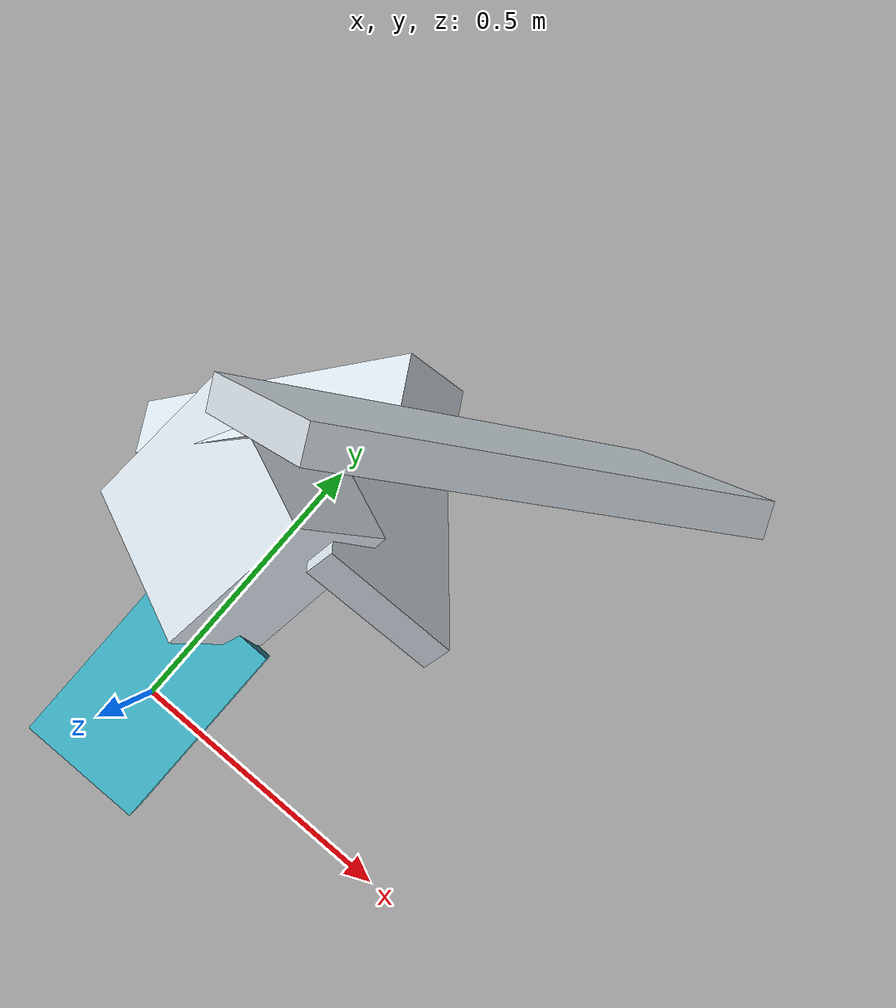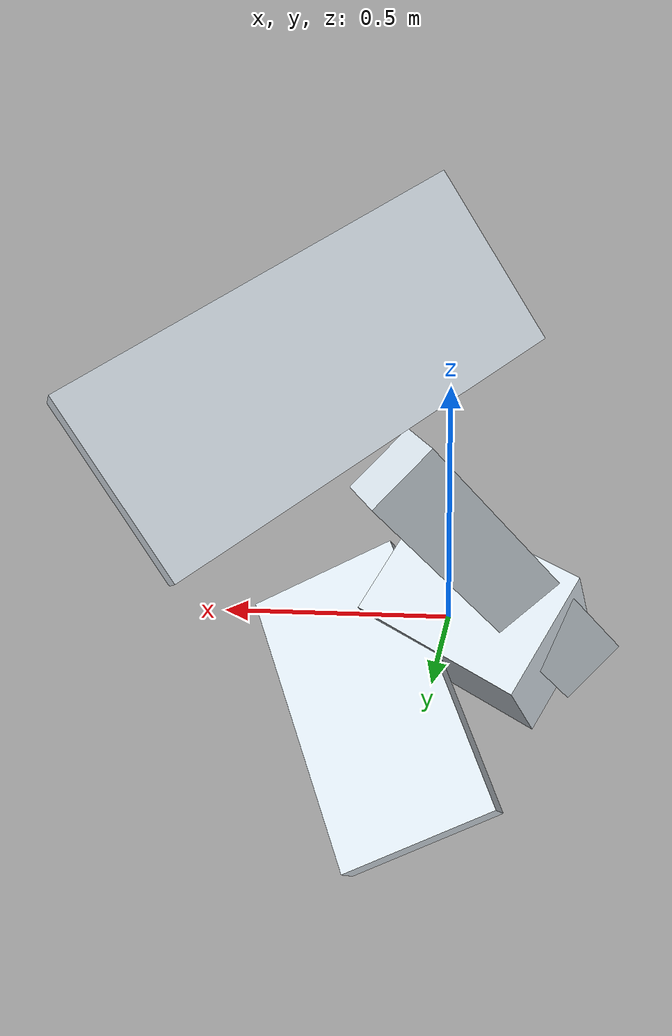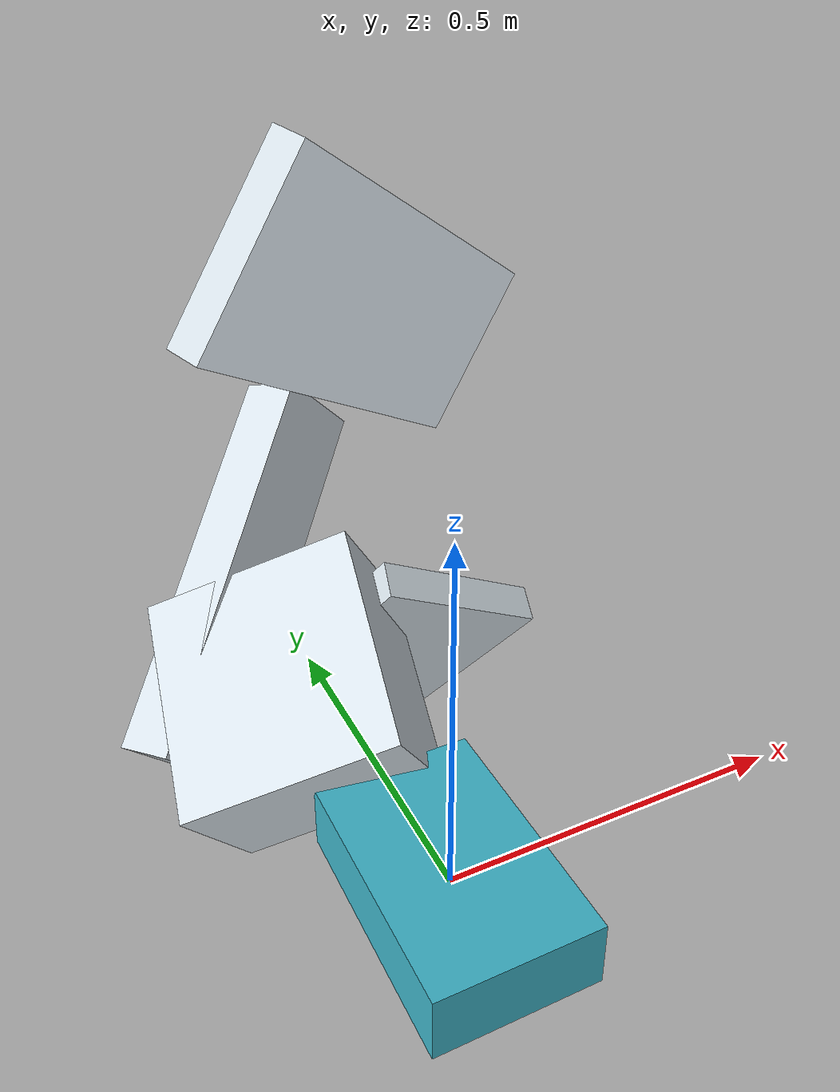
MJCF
<mujoco model="criatura">
  <compiler angle="degree" autolimits="true"/>
  <option timestep="0.002083" gravity="0 0 0" integrator="implicitfast"/>
  <default>
    <geom type="box" density="300.0" rgba="0.85 0.89 0.92 1"/>
    <joint type="hinge"/>
    <motor ctrlrange="-1 1"/>
  </default>
  <worldbody>
    <body name="p0_n0" pos="0.00000 0.00000 0.00000" quat="1.000000 0.000000 0.000000 0.000000">
      <freejoint name="raiz"/>
      <geom name="g_p0_n0" size="0.11341 0.17660 0.04672" rgba="0.25 0.72 0.8 1"/>
      <body name="p1_n1" pos="-0.07760 0.33281 0.07831" quat="0.753606 -0.002151 -0.319233 0.574599">
        <geom name="g_p1_n1" size="0.16009 0.15489 0.11393"/>
        <body name="p2_n2" pos="0.19568 0.03170 0.04649" quat="0.868044 -0.096420 0.115773 0.473074">
          <joint name="p2_n2_j0" axis="1.0000 0.0000 0.0000" pos="-0.06772 0 0" range="-33.43 33.43" damping="3.5292"/>
          <joint name="p2_n2_j1" axis="0.0000 -1.0000 0.0000" pos="-0.06772 0 0" range="-33.43 33.43" damping="3.5292"/>
          <joint name="p2_n2_j2" axis="0.0000 0.0000 1.0000" pos="-0.06772 0 0" range="-33.43 33.43" damping="3.5292"/>
          <geom name="g_p2_n2" size="0.04772 0.28657 0.06472"/>
          <body name="p3_n4" pos="-0.11613 -0.44149 0.02603" quat="-0.378856 -0.370474 0.725834 0.438615">
            <joint name="p3_n4_j0" axis="1.0000 0.0000 0.0000" pos="-0.17803 0 0" range="-37.05 37.05" damping="2.0249"/>
            <joint name="p3_n4_j1" axis="0.0000 1.0000 0.0000" pos="-0.17803 0 0" range="-37.05 37.05" damping="2.0249"/>
            <joint name="p3_n4_j2" axis="0.0000 0.0000 1.0000" pos="-0.17803 0 0" range="-37.05 37.05" damping="2.0249"/>
            <geom name="g_p3_n4" size="0.15803 0.36328 0.02787"/>
          </body>
        </body>
        <body name="p4_n3" pos="0.10454 -0.05965 -0.24029" quat="-0.212083 -0.648281 0.238141 0.691405">
          <joint name="p4_n3_j0" axis="1.0000 0.0000 0.0000" pos="-0.15886 0 0" range="-38.34 38.34" damping="1.4497"/>
          <joint name="p4_n3_j1" axis="0.0000 -1.0000 0.0000" pos="-0.15886 0 0" range="-38.34 38.34" damping="1.4497"/>
          <joint name="p4_n3_j2" axis="0.0000 0.0000 1.0000" pos="-0.15886 0 0" range="-38.34 38.34" damping="1.4497"/>
          <geom name="g_p4_n3" size="0.13886 0.25328 0.02862"/>
        </body>
      </body>
    </body>
  </worldbody>
  <actuator>
    <motor name="m_p2_n2_j0" joint="p2_n2_j0" gear="-70.5842"/>
    <motor name="m_p2_n2_j1" joint="p2_n2_j1" gear="-70.5842"/>
    <motor name="m_p2_n2_j2" joint="p2_n2_j2" gear="-70.5842"/>
    <motor name="m_p3_n4_j0" joint="p3_n4_j0" gear="40.4977"/>
    <motor name="m_p3_n4_j1" joint="p3_n4_j1" gear="40.4977"/>
    <motor name="m_p3_n4_j2" joint="p3_n4_j2" gear="40.4977"/>
    <motor name="m_p4_n3_j0" joint="p4_n3_j0" gear="-28.9937"/>
    <motor name="m_p4_n3_j1" joint="p4_n3_j1" gear="-28.9937"/>
    <motor name="m_p4_n3_j2" joint="p4_n3_j2" gear="-28.9937"/>
  </actuator>
</mujoco>
